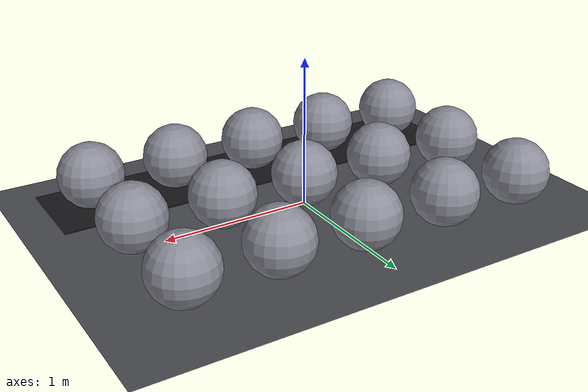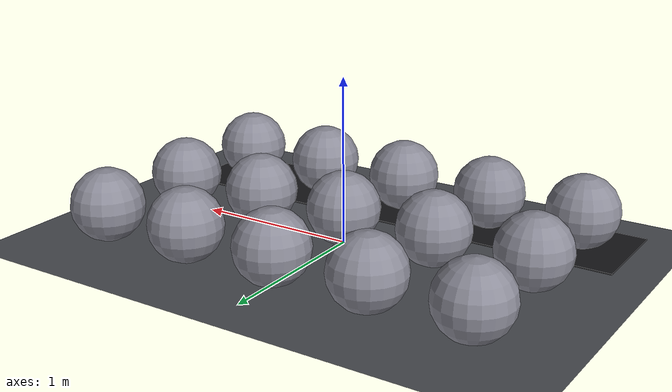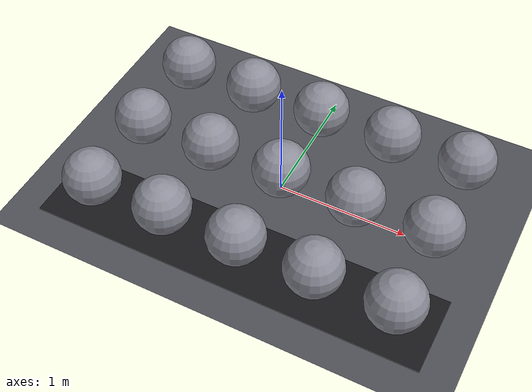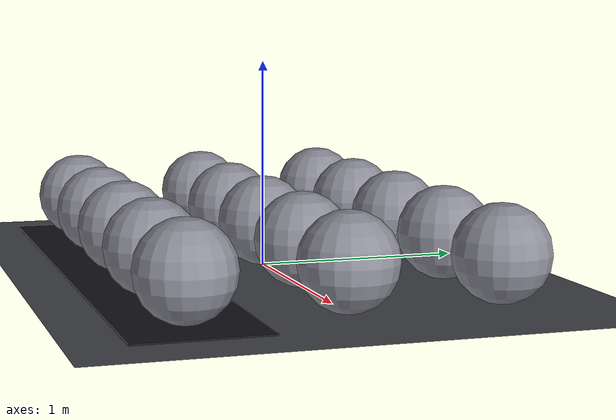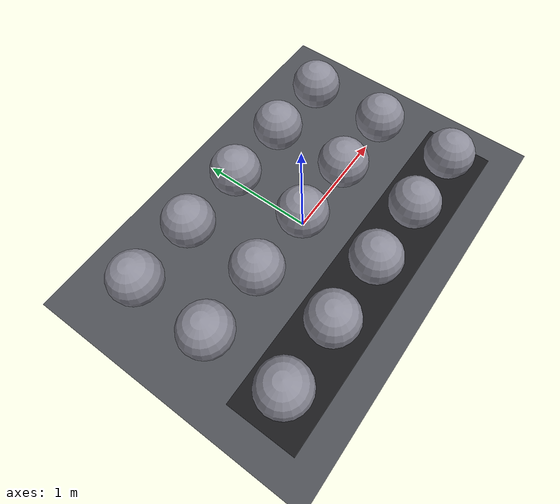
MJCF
<mujoco model="material_matrix">
  <compiler angle="degree" autolimits="true"/>

  <visual>
    <headlight ambient="0.10 0.10 0.10" diffuse="0.05 0.05 0.05" specular="0.0 0.0 0.0"/>
    <quality shadowsize="2048" numslices="32" numstacks="16"/>
    <map znear="0.02" zfar="30"/>
  </visual>

  <asset>
    <material name="ground" rgba="0.30 0.31 0.33 1" specular="0.05" shininess="0.1"/>
    <material name="shade" rgba="0.10 0.10 0.11 1" specular="0.0" shininess="0.0"/>

    <material name="spec_0" rgba="0.55 0.55 0.60 1" specular="0.00" shininess="0.5"/>
    <material name="spec_1" rgba="0.55 0.55 0.60 1" specular="0.25" shininess="0.5"/>
    <material name="spec_2" rgba="0.55 0.55 0.60 1" specular="0.50" shininess="0.5"/>
    <material name="spec_3" rgba="0.55 0.55 0.60 1" specular="0.75" shininess="0.5"/>
    <material name="spec_4" rgba="0.55 0.55 0.60 1" specular="1.00" shininess="0.5"/>

    <material name="shin_0" rgba="0.55 0.55 0.60 1" specular="1.0" shininess="0.00"/>
    <material name="shin_1" rgba="0.55 0.55 0.60 1" specular="1.0" shininess="0.25"/>
    <material name="shin_2" rgba="0.55 0.55 0.60 1" specular="1.0" shininess="0.50"/>
    <material name="shin_3" rgba="0.55 0.55 0.60 1" specular="1.0" shininess="0.75"/>
    <material name="shin_4" rgba="0.55 0.55 0.60 1" specular="1.0" shininess="1.00"/>

    <material name="emit_0" rgba="0.55 0.55 0.60 1" specular="0.2" shininess="0.5" emission="0.00"/>
    <material name="emit_1" rgba="0.55 0.55 0.60 1" specular="0.2" shininess="0.5" emission="0.25"/>
    <material name="emit_2" rgba="0.55 0.55 0.60 1" specular="0.2" shininess="0.5" emission="0.50"/>
    <material name="emit_3" rgba="0.55 0.55 0.60 1" specular="0.2" shininess="0.5" emission="0.75"/>
    <material name="emit_4" rgba="0.55 0.55 0.60 1" specular="0.2" shininess="0.5" emission="1.00"/>
  </asset>

  <worldbody>
    <light name="key" type="directional" pos="0 -2.5 3" dir="0 0.55 -1"
           diffuse="0.65 0.65 0.65" specular="0.9 0.9 0.9" castshadow="false"/>

    <geom name="floor" type="plane" size="0 0 0.05" material="ground"/>

    <geom name="spec_0" type="sphere" pos="-1.2 0.7 0.22" size="0.22" material="spec_0"/>
    <geom name="spec_1" type="sphere" pos="-0.6 0.7 0.22" size="0.22" material="spec_1"/>
    <geom name="spec_2" type="sphere" pos=" 0.0 0.7 0.22" size="0.22" material="spec_2"/>
    <geom name="spec_3" type="sphere" pos=" 0.6 0.7 0.22" size="0.22" material="spec_3"/>
    <geom name="spec_4" type="sphere" pos=" 1.2 0.7 0.22" size="0.22" material="spec_4"/>

    <geom name="shin_0" type="sphere" pos="-1.2 0.0 0.22" size="0.22" material="shin_0"/>
    <geom name="shin_1" type="sphere" pos="-0.6 0.0 0.22" size="0.22" material="shin_1"/>
    <geom name="shin_2" type="sphere" pos=" 0.0 0.0 0.22" size="0.22" material="shin_2"/>
    <geom name="shin_3" type="sphere" pos=" 0.6 0.0 0.22" size="0.22" material="shin_3"/>
    <geom name="shin_4" type="sphere" pos=" 1.2 0.0 0.22" size="0.22" material="shin_4"/>

    <geom name="shade_board" type="box" pos="0 -0.7 0.004" size="1.5 0.3 0.004" material="shade"/>
    <geom name="emit_0" type="sphere" pos="-1.2 -0.7 0.22" size="0.22" material="emit_0"/>
    <geom name="emit_1" type="sphere" pos="-0.6 -0.7 0.22" size="0.22" material="emit_1"/>
    <geom name="emit_2" type="sphere" pos=" 0.0 -0.7 0.22" size="0.22" material="emit_2"/>
    <geom name="emit_3" type="sphere" pos=" 0.6 -0.7 0.22" size="0.22" material="emit_3"/>
    <geom name="emit_4" type="sphere" pos=" 1.2 -0.7 0.22" size="0.22" material="emit_4"/>

    <camera name="matrix" pos="0 -2.55 1.70" xyaxes="1 0 0 0 0.55 0.84"/>
  </worldbody>
</mujoco>
